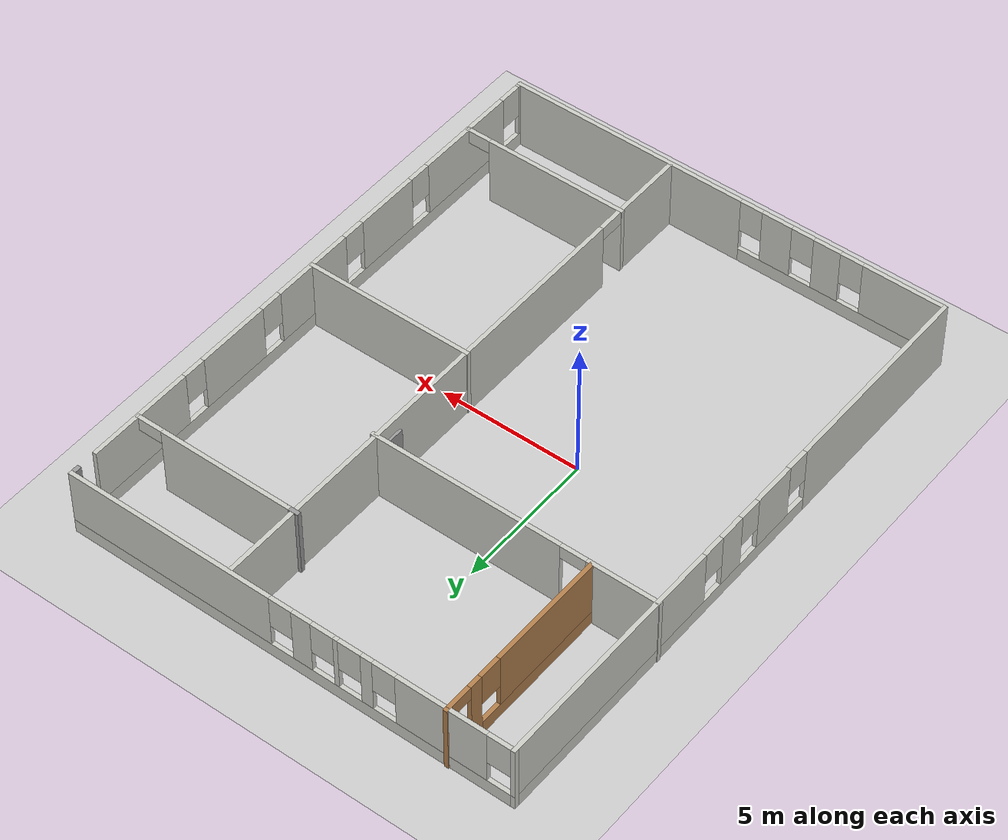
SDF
<sdf version="1.6">
 <world name="default">
  <model name="ground_plane">
   <static>1</static>
   <link name="link">
    <collision name="collision">
     <geometry><plane><normal>0 0 1</normal><size>100 100</size></plane></geometry>
     <surface>
      <contact><collide_bitmask>65535</collide_bitmask></contact>
      <friction><ode><mu>100</mu><mu2>50</mu2></ode></friction>
     </surface>
    </collision>
    <visual name="visual">
     <cast_shadows>0</cast_shadows>
     <geometry><plane><normal>0 0 1</normal><size>100 100</size></plane></geometry>
     <material>
      <script><uri>file://media/materials/scripts/gazebo.material</uri><name>Gazebo/Grey</name></script>
     </material>
    </visual>
   </link>
  </model>
  <model name="home1">
   <pose>1.93406 0.373557 0 0 0 -1.57238</pose>
   <link name="Door_1">
    <collision name="Door_1_Collision">
     <geometry><box><size>0.9 0.17 2</size></box></geometry>
     <pose>0 0 1 0 -0 0</pose>
    </collision>
    <visual name="Door_1_Visual">
     <pose>0 0 1 0 -0 0</pose>
     <geometry><box><size>0.9 0.17 2</size></box></geometry>
     <material>
      <script><uri>file://media/materials/scripts/gazebo.material</uri><name>Gazebo/Grey</name></script>
     </material>
    </visual>
    <pose>-3.38588 1.98487 0 0 -0 0</pose>
   </link>
   <link name="Wall_0">
    <pose>0.147604 7.93643 0 0 -0 0</pose>
    <visual name="Wall_0_Visual_0">
     <pose>0 0 0.25 0 -0 0</pose>
     <geometry><box><size>20.5 0.15 0.5</size></box></geometry>
     <material>
      <script><uri>file://media/materials/scripts/gazebo.material</uri><name>Gazebo/CeilingTiled</name></script>
      <ambient>0.921569 0.807843 0.615686 1</ambient>
     </material>
     <meta><layer>0</layer></meta>
    </visual>
    <collision name="Wall_0_Collision_0">
     <geometry><box><size>20.5 0.15 0.5</size></box></geometry>
     <pose>0 0 0.25 0 -0 0</pose>
    </collision>
    <visual name="Wall_0_Visual_1">
     <pose>-7.57631 0 1.5 0 -0 0</pose>
     <geometry><box><size>3.82612 0.15 2</size></box></geometry>
     <material>
      <script><uri>file://media/materials/scripts/gazebo.material</uri><name>Gazebo/CeilingTiled</name></script>
      <ambient>0.921569 0.807843 0.615686 1</ambient>
     </material>
     <meta><layer>0</layer></meta>
    </visual>
    <collision name="Wall_0_Collision_1">
     <geometry><box><size>3.82612 0.15 2</size></box></geometry>
     <pose>-7.57631 0 1.5 0 -0 0</pose>
    </collision>
    <visual name="Wall_0_Visual_2">
     <pose>-3.55359 0 1.5 0 -0 0</pose>
     <geometry><box><size>2.61931 0.15 2</size></box></geometry>
     <material>
      <script><uri>file://media/materials/scripts/gazebo.material</uri><name>Gazebo/CeilingTiled</name></script>
      <ambient>0.921569 0.807843 0.615686 1</ambient>
     </material>
     <meta><layer>0</layer></meta>
    </visual>
    <collision name="Wall_0_Collision_2">
     <geometry><box><size>2.61931 0.15 2</size></box></geometry>
     <pose>-3.55359 0 1.5 0 -0 0</pose>
    </collision>
    <visual name="Wall_0_Visual_3">
     <pose>0.062686 0 1.5 0 -0 0</pose>
     <geometry><box><size>3.01325 0.15 2</size></box></geometry>
     <material>
      <script><uri>file://media/materials/scripts/gazebo.material</uri><name>Gazebo/CeilingTiled</name></script>
      <ambient>0.921569 0.807843 0.615686 1</ambient>
     </material>
     <meta><layer>0</layer></meta>
    </visual>
    <collision name="Wall_0_Collision_3">
     <geometry><box><size>3.01325 0.15 2</size></box></geometry>
     <pose>0.062686 0 1.5 0 -0 0</pose>
    </collision>
    <visual name="Wall_0_Visual_4">
     <pose>3.53817 0 1.5 0 -0 0</pose>
     <geometry><box><size>2.33772 0.15 2</size></box></geometry>
     <material>
      <script><uri>file://media/materials/scripts/gazebo.material</uri><name>Gazebo/CeilingTiled</name></script>
      <ambient>0.921569 0.807843 0.615686 1</ambient>
     </material>
     <meta><layer>0</layer></meta>
    </visual>
    <collision name="Wall_0_Collision_4">
     <geometry><box><size>2.33772 0.15 2</size></box></geometry>
     <pose>3.53817 0 1.5 0 -0 0</pose>
    </collision>
    <visual name="Wall_0_Visual_5">
     <pose>7.35975 0 1.5 0 -0 0</pose>
     <geometry><box><size>3.70544 0.15 2</size></box></geometry>
     <material>
      <script><uri>file://media/materials/scripts/gazebo.material</uri><name>Gazebo/CeilingTiled</name></script>
      <ambient>0.921569 0.807843 0.615686 1</ambient>
     </material>
     <meta><layer>0</layer></meta>
    </visual>
    <collision name="Wall_0_Collision_5">
     <geometry><box><size>3.70544 0.15 2</size></box></geometry>
     <pose>7.35975 0 1.5 0 -0 0</pose>
    </collision>
    <visual name="Wall_0_Visual_6">
     <pose>10.1312 0 1.5 0 -0 0</pose>
     <geometry><box><size>0.237531 0.15 2</size></box></geometry>
     <material>
      <script><uri>file://media/materials/scripts/gazebo.material</uri><name>Gazebo/CeilingTiled</name></script>
      <ambient>0.921569 0.807843 0.615686 1</ambient>
     </material>
     <meta><layer>0</layer></meta>
    </visual>
    <collision name="Wall_0_Collision_6">
     <geometry><box><size>0.237531 0.15 2</size></box></geometry>
     <pose>10.1312 0 1.5 0 -0 0</pose>
    </collision>
    <visual name="Wall_0_Visual_7">
     <pose>-5.26325 0 1.9 0 -0 0</pose>
     <geometry><box><size>0.8 0.15 1.2</size></box></geometry>
     <material>
      <script><uri>file://media/materials/scripts/gazebo.material</uri><name>Gazebo/CeilingTiled</name></script>
      <ambient>0.921569 0.807843 0.615686 1</ambient>
     </material>
     <meta><layer>0</layer></meta>
    </visual>
    <collision name="Wall_0_Collision_7">
     <geometry><box><size>0.8 0.15 1.2</size></box></geometry>
     <pose>-5.26325 0 1.9 0 -0 0</pose>
    </collision>
    <visual name="Wall_0_Visual_8">
     <pose>-1.84394 0 1.9 0 -0 0</pose>
     <geometry><box><size>0.8 0.15 1.2</size></box></geometry>
     <material>
      <script><uri>file://media/materials/scripts/gazebo.material</uri><name>Gazebo/CeilingTiled</name></script>
      <ambient>0.921569 0.807843 0.615686 1</ambient>
     </material>
     <meta><layer>0</layer></meta>
    </visual>
    <collision name="Wall_0_Collision_8">
     <geometry><box><size>0.8 0.15 1.2</size></box></geometry>
     <pose>-1.84394 0 1.9 0 -0 0</pose>
    </collision>
    <visual name="Wall_0_Visual_9">
     <pose>1.96931 0 1.9 0 -0 0</pose>
     <geometry><box><size>0.8 0.15 1.2</size></box></geometry>
     <material>
      <script><uri>file://media/materials/scripts/gazebo.material</uri><name>Gazebo/CeilingTiled</name></script>
      <ambient>0.921569 0.807843 0.615686 1</ambient>
     </material>
     <meta><layer>0</layer></meta>
    </visual>
    <collision name="Wall_0_Collision_9">
     <geometry><box><size>0.8 0.15 1.2</size></box></geometry>
     <pose>1.96931 0 1.9 0 -0 0</pose>
    </collision>
    <visual name="Wall_0_Visual_10">
     <pose>5.10703 0 1.9 0 -0 0</pose>
     <geometry><box><size>0.8 0.15 1.2</size></box></geometry>
     <material>
      <script><uri>file://media/materials/scripts/gazebo.material</uri><name>Gazebo/CeilingTiled</name></script>
      <ambient>0.921569 0.807843 0.615686 1</ambient>
     </material>
     <meta><layer>0</layer></meta>
    </visual>
    <collision name="Wall_0_Collision_10">
     <geometry><box><size>0.8 0.15 1.2</size></box></geometry>
     <pose>5.10703 0 1.9 0 -0 0</pose>
    </collision>
    <visual name="Wall_0_Visual_11">
     <pose>9.61247 0 1.9 0 -0 0</pose>
     <geometry><box><size>0.8 0.15 1.2</size></box></geometry>
     <material>
      <script><uri>file://media/materials/scripts/gazebo.material</uri><name>Gazebo/CeilingTiled</name></script>
      <ambient>0.921569 0.807843 0.615686 1</ambient>
     </material>
     <meta><layer>0</layer></meta>
    </visual>
    <collision name="Wall_0_Collision_11">
     <geometry><box><size>0.8 0.15 1.2</size></box></geometry>
     <pose>9.61247 0 1.9 0 -0 0</pose>
    </collision>
   </link>
   <link name="Wall_1">
    <pose>10.3226 0.011429 0 0 -0 -1.5708</pose>
    <visual name="Wall_1_Visual_0">
     <pose>-3.70199 0 1.25 0 -0 0</pose>
     <geometry><box><size>8.59603 0.15 2.5</size></box></geometry>
     <material>
      <script><uri>file://media/materials/scripts/gazebo.material</uri><name>Gazebo/CeilingTiled</name></script>
      <ambient>0.921569 0.807843 0.615686 1</ambient>
     </material>
     <meta><layer>0</layer></meta>
    </visual>
    <collision name="Wall_1_Collision_0">
     <geometry><box><size>8.59603 0.15 2.5</size></box></geometry>
     <pose>-3.70199 0 1.25 0 -0 0</pose>
    </collision>
    <visual name="Wall_1_Visual_1">
     <pose>4.29801 0 0.25 0 -0 0</pose>
     <geometry><box><size>7.40397 0.15 0.5</size></box></geometry>
     <material>
      <script><uri>file://media/materials/scripts/gazebo.material</uri><name>Gazebo/CeilingTiled</name></script>
      <ambient>0.921569 0.807843 0.615686 1</ambient>
     </material>
     <meta><layer>0</layer></meta>
    </visual>
    <collision name="Wall_1_Collision_1">
     <geometry><box><size>7.40397 0.15 0.5</size></box></geometry>
     <pose>4.29801 0 0.25 0 -0 0</pose>
    </collision>
    <visual name="Wall_1_Visual_2">
     <pose>1.94137 0 1.5 0 -0 0</pose>
     <geometry><box><size>1.09068 0.15 2</size></box></geometry>
     <material>
      <script><uri>file://media/materials/scripts/gazebo.material</uri><name>Gazebo/CeilingTiled</name></script>
      <ambient>0.921569 0.807843 0.615686 1</ambient>
     </material>
     <meta><layer>0</layer></meta>
    </visual>
    <collision name="Wall_1_Collision_2">
     <geometry><box><size>1.09068 0.15 2</size></box></geometry>
     <pose>1.94137 0 1.5 0 -0 0</pose>
    </collision>
    <visual name="Wall_1_Visual_3">
     <pose>3.7717 0 1.5 0 -0 0</pose>
     <geometry><box><size>0.969995 0.15 2</size></box></geometry>
     <material>
      <script><uri>file://media/materials/scripts/gazebo.material</uri><name>Gazebo/CeilingTiled</name></script>
      <ambient>0.921569 0.807843 0.615686 1</ambient>
     </material>
     <meta><layer>0</layer></meta>
    </visual>
    <collision name="Wall_1_Collision_3">
     <geometry><box><size>0.969995 0.15 2</size></box></geometry>
     <pose>3.7717 0 1.5 0 -0 0</pose>
    </collision>
    <visual name="Wall_1_Visual_4">
     <pose>6.52835 0 1.5 0 -0 0</pose>
     <geometry><box><size>2.9433 0.15 2</size></box></geometry>
     <material>
      <script><uri>file://media/materials/scripts/gazebo.material</uri><name>Gazebo/CeilingTiled</name></script>
      <ambient>0.921569 0.807843 0.615686 1</ambient>
     </material>
     <meta><layer>0</layer></meta>
    </visual>
    <collision name="Wall_1_Collision_4">
     <geometry><box><size>2.9433 0.15 2</size></box></geometry>
     <pose>6.52835 0 1.5 0 -0 0</pose>
    </collision>
    <visual name="Wall_1_Visual_5">
     <pose>0.996027 0 1.9 0 -0 0</pose>
     <geometry><box><size>0.8 0.15 1.2</size></box></geometry>
     <material>
      <script><uri>file://media/materials/scripts/gazebo.material</uri><name>Gazebo/CeilingTiled</name></script>
      <ambient>0.921569 0.807843 0.615686 1</ambient>
     </material>
     <meta><layer>0</layer></meta>
    </visual>
    <collision name="Wall_1_Collision_5">
     <geometry><box><size>0.8 0.15 1.2</size></box></geometry>
     <pose>0.996027 0 1.9 0 -0 0</pose>
    </collision>
    <visual name="Wall_1_Visual_6">
     <pose>2.8867 0 1.9 0 -0 0</pose>
     <geometry><box><size>0.8 0.15 1.2</size></box></geometry>
     <material>
      <script><uri>file://media/materials/scripts/gazebo.material</uri><name>Gazebo/CeilingTiled</name></script>
      <ambient>0.921569 0.807843 0.615686 1</ambient>
     </material>
     <meta><layer>0</layer></meta>
    </visual>
    <collision name="Wall_1_Collision_6">
     <geometry><box><size>0.8 0.15 1.2</size></box></geometry>
     <pose>2.8867 0 1.9 0 -0 0</pose>
    </collision>
    <visual name="Wall_1_Visual_7">
     <pose>4.6567 0 1.9 0 -0 0</pose>
     <geometry><box><size>0.8 0.15 1.2</size></box></geometry>
     <material>
      <script><uri>file://media/materials/scripts/gazebo.material</uri><name>Gazebo/CeilingTiled</name></script>
      <ambient>0.921569 0.807843 0.615686 1</ambient>
     </material>
     <meta><layer>0</layer></meta>
    </visual>
    <collision name="Wall_1_Collision_7">
     <geometry><box><size>0.8 0.15 1.2</size></box></geometry>
     <pose>4.6567 0 1.9 0 -0 0</pose>
    </collision>
   </link>
   <link name="Wall_11">
    <collision name="Wall_11_Collision">
     <geometry><box><size>6 0.15 2.5</size></box></geometry>
     <pose>0 0 1.25 0 -0 0</pose>
    </collision>
    <visual name="Wall_11_Visual">
     <pose>0 0 1.25 0 -0 0</pose>
     <geometry><box><size>6 0.15 2.5</size></box></geometry>
     <material>
      <script><uri>file://media/materials/scripts/gazebo.material</uri><name>Gazebo/CeilingTiled</name></script>
      <ambient>0.921569 0.807843 0.615686 1</ambient>
     </material>
     <meta><layer>0</layer></meta>
    </visual>
    <pose>0.224951 4.97496 0 0 -0 -1.5708</pose>
   </link>
   <link name="Wall_13">
    <pose>-7.14761 -5.65458 0 0 -0 0</pose>
    <visual name="Wall_13_Visual_0">
     <pose>-3.18319 0 1.25 0 -0 0</pose>
     <geometry><box><size>0.133628 0.15 2.5</size></box></geometry>
     <material>
      <script><uri>file://media/materials/scripts/gazebo.material</uri><name>Gazebo/Wood</name></script>
      <ambient>0.921569 0.807843 0.615686 1</ambient>
     </material>
     <meta><layer>0</layer></meta>
    </visual>
    <collision name="Wall_13_Collision_0">
     <geometry><box><size>0.133628 0.15 2.5</size></box></geometry>
     <pose>-3.18319 0 1.25 0 -0 0</pose>
    </collision>
    <visual name="Wall_13_Visual_1">
     <pose>-1.98591 0 1.25 0 -0 0</pose>
     <geometry><box><size>0.460928 0.15 2.5</size></box></geometry>
     <material>
      <script><uri>file://media/materials/scripts/gazebo.material</uri><name>Gazebo/Wood</name></script>
      <ambient>0.921569 0.807843 0.615686 1</ambient>
     </material>
     <meta><layer>0</layer></meta>
    </visual>
    <collision name="Wall_13_Collision_1">
     <geometry><box><size>0.460928 0.15 2.5</size></box></geometry>
     <pose>-1.98591 0 1.25 0 -0 0</pose>
    </collision>
    <visual name="Wall_13_Visual_2">
     <pose>0.747278 0 0.25 0 -0 0</pose>
     <geometry><box><size>5.00544 0.15 0.5</size></box></geometry>
     <material>
      <script><uri>file://media/materials/scripts/gazebo.material</uri><name>Gazebo/Wood</name></script>
      <ambient>0.921569 0.807843 0.615686 1</ambient>
     </material>
     <meta><layer>0</layer></meta>
    </visual>
    <collision name="Wall_13_Collision_2">
     <geometry><box><size>5.00544 0.15 0.5</size></box></geometry>
     <pose>0.747278 0 0.25 0 -0 0</pose>
    </collision>
    <visual name="Wall_13_Visual_3">
     <pose>1.14728 0 1.5 0 -0 0</pose>
     <geometry><box><size>4.20544 0.15 2</size></box></geometry>
     <material>
      <script><uri>file://media/materials/scripts/gazebo.material</uri><name>Gazebo/Wood</name></script>
      <ambient>0.921569 0.807843 0.615686 1</ambient>
     </material>
     <meta><layer>0</layer></meta>
    </visual>
    <collision name="Wall_13_Collision_3">
     <geometry><box><size>4.20544 0.15 2</size></box></geometry>
     <pose>1.14728 0 1.5 0 -0 0</pose>
    </collision>
    <visual name="Wall_13_Visual_4">
     <pose>-1.35544 0 1.9 0 -0 0</pose>
     <geometry><box><size>0.8 0.15 1.2</size></box></geometry>
     <material>
      <script><uri>file://media/materials/scripts/gazebo.material</uri><name>Gazebo/Wood</name></script>
      <ambient>0.921569 0.807843 0.615686 1</ambient>
     </material>
     <meta><layer>0</layer></meta>
    </visual>
    <collision name="Wall_13_Collision_4">
     <geometry><box><size>0.8 0.15 1.2</size></box></geometry>
     <pose>-1.35544 0 1.9 0 -0 0</pose>
    </collision>
    <visual name="Wall_13_Visual_5">
     <pose>-2.66637 0 2.25 0 -0 0</pose>
     <geometry><box><size>0.9 0.15 0.5</size></box></geometry>
     <material>
      <script><uri>file://media/materials/scripts/gazebo.material</uri><name>Gazebo/Wood</name></script>
      <ambient>0.921569 0.807843 0.615686 1</ambient>
     </material>
     <meta><layer>0</layer></meta>
    </visual>
    <collision name="Wall_13_Collision_5">
     <geometry><box><size>0.9 0.15 0.5</size></box></geometry>
     <pose>-2.66637 0 2.25 0 -0 0</pose>
    </collision>
   </link>
   <link name="Wall_15">
    <pose>-7.50067 5.09996 0 0 -0 -1.5708</pose>
    <visual name="Wall_15_Visual_0">
     <pose>-2.83635 0 1.25 0 -0 0</pose>
     <geometry><box><size>0.077299 0.15 2.5</size></box></geometry>
     <material>
      <script><uri>file://media/materials/scripts/gazebo.material</uri><name>Gazebo/CeilingTiled</name></script>
      <ambient>0.921569 0.807843 0.615686 1</ambient>
     </material>
     <meta><layer>0</layer></meta>
    </visual>
    <collision name="Wall_15_Collision_0">
     <geometry><box><size>0.077299 0.15 2.5</size></box></geometry>
     <pose>-2.83635 0 1.25 0 -0 0</pose>
    </collision>
    <visual name="Wall_15_Visual_1">
     <pose>0.488649 0 1.25 0 -0 0</pose>
     <geometry><box><size>4.7727 0.15 2.5</size></box></geometry>
     <material>
      <script><uri>file://media/materials/scripts/gazebo.material</uri><name>Gazebo/CeilingTiled</name></script>
      <ambient>0.921569 0.807843 0.615686 1</ambient>
     </material>
     <meta><layer>0</layer></meta>
    </visual>
    <collision name="Wall_15_Collision_1">
     <geometry><box><size>4.7727 0.15 2.5</size></box></geometry>
     <pose>0.488649 0 1.25 0 -0 0</pose>
    </collision>
    <visual name="Wall_15_Visual_2">
     <pose>-2.3477 0 2.25 0 -0 0</pose>
     <geometry><box><size>0.9 0.15 0.5</size></box></geometry>
     <material>
      <script><uri>file://media/materials/scripts/gazebo.material</uri><name>Gazebo/CeilingTiled</name></script>
      <ambient>0.921569 0.807843 0.615686 1</ambient>
     </material>
     <meta><layer>0</layer></meta>
    </visual>
    <collision name="Wall_15_Collision_2">
     <geometry><box><size>0.9 0.15 0.5</size></box></geometry>
     <pose>-2.3477 0 2.25 0 -0 0</pose>
    </collision>
   </link>
   <link name="Wall_17">
    <collision name="Wall_17_Collision">
     <geometry><box><size>0.5 0.15 2.5</size></box></geometry>
     <pose>0 0 1.25 0 -0 0</pose>
    </collision>
    <visual name="Wall_17_Visual">
     <pose>0 0 1.25 0 -0 0</pose>
     <geometry><box><size>0.5 0.15 2.5</size></box></geometry>
     <material>
      <script><uri>file://media/materials/scripts/gazebo.material</uri><name>Gazebo/Grey</name></script>
      <ambient>1 1 1 1</ambient>
     </material>
     <meta><layer>0</layer></meta>
    </visual>
    <pose>-7.50067 2.12496 0 0 -0 -1.5708</pose>
   </link>
   <link name="Wall_19">
    <pose>7.71927 4.97496 0 0 -0 -1.5708</pose>
    <visual name="Wall_19_Visual_0">
     <pose>-2.99633 0 1.25 0 -0 0</pose>
     <geometry><box><size>0.007339 0.15 2.5</size></box></geometry>
     <material>
      <script><uri>file://media/materials/scripts/gazebo.material</uri><name>Gazebo/CeilingTiled</name></script>
      <ambient>0.921569 0.807843 0.615686 1</ambient>
     </material>
     <meta><layer>0</layer></meta>
    </visual>
    <collision name="Wall_19_Collision_0">
     <geometry><box><size>0.007339 0.15 2.5</size></box></geometry>
     <pose>-2.99633 0 1.25 0 -0 0</pose>
    </collision>
    <visual name="Wall_19_Visual_1">
     <pose>0.453669 0 1.25 0 -0 0</pose>
     <geometry><box><size>5.09266 0.15 2.5</size></box></geometry>
     <material>
      <script><uri>file://media/materials/scripts/gazebo.material</uri><name>Gazebo/CeilingTiled</name></script>
      <ambient>0.921569 0.807843 0.615686 1</ambient>
     </material>
     <meta><layer>0</layer></meta>
    </visual>
    <collision name="Wall_19_Collision_1">
     <geometry><box><size>5.09266 0.15 2.5</size></box></geometry>
     <pose>0.453669 0 1.25 0 -0 0</pose>
    </collision>
    <visual name="Wall_19_Visual_2">
     <pose>-2.54266 0 2.25 0 -0 0</pose>
     <geometry><box><size>0.9 0.15 0.5</size></box></geometry>
     <material>
      <script><uri>file://media/materials/scripts/gazebo.material</uri><name>Gazebo/CeilingTiled</name></script>
      <ambient>0.921569 0.807843 0.615686 1</ambient>
     </material>
     <meta><layer>0</layer></meta>
    </visual>
    <collision name="Wall_19_Collision_2">
     <geometry><box><size>0.9 0.15 0.5</size></box></geometry>
     <pose>-2.54266 0 2.25 0 -0 0</pose>
    </collision>
   </link>
   <link name="Wall_2">
    <pose>0.022604 -7.91357 0 0 -0 3.14159</pose>
    <visual name="Wall_2_Visual_0">
     <pose>-6.73636 0 1.25 0 -0 0</pose>
     <geometry><box><size>7.27728 0.15 2.5</size></box></geometry>
     <material>
      <script><uri>file://media/materials/scripts/gazebo.material</uri><name>Gazebo/CeilingTiled</name></script>
      <ambient>0.921569 0.807843 0.615686 1</ambient>
     </material>
     <meta><layer>0</layer></meta>
    </visual>
    <collision name="Wall_2_Collision_0">
     <geometry><box><size>7.27728 0.15 2.5</size></box></geometry>
     <pose>-6.73636 0 1.25 0 -0 0</pose>
    </collision>
    <visual name="Wall_2_Visual_1">
     <pose>3.63864 0 0.25 0 -0 0</pose>
     <geometry><box><size>13.4727 0.15 0.5</size></box></geometry>
     <material>
      <script><uri>file://media/materials/scripts/gazebo.material</uri><name>Gazebo/CeilingTiled</name></script>
      <ambient>0.921569 0.807843 0.615686 1</ambient>
     </material>
     <meta><layer>0</layer></meta>
    </visual>
    <collision name="Wall_2_Collision_1">
     <geometry><box><size>13.4727 0.15 0.5</size></box></geometry>
     <pose>3.63864 0 0.25 0 -0 0</pose>
    </collision>
    <visual name="Wall_2_Visual_2">
     <pose>-1.53113 0 1.5 0 -0 0</pose>
     <geometry><box><size>1.53317 0.15 2</size></box></geometry>
     <material>
      <script><uri>file://media/materials/scripts/gazebo.material</uri><name>Gazebo/CeilingTiled</name></script>
      <ambient>0.921569 0.807843 0.615686 1</ambient>
     </material>
     <meta><layer>0</layer></meta>
    </visual>
    <collision name="Wall_2_Collision_2">
     <geometry><box><size>1.53317 0.15 2</size></box></geometry>
     <pose>-1.53113 0 1.5 0 -0 0</pose>
    </collision>
    <visual name="Wall_2_Visual_3">
     <pose>0.50034 0 1.5 0 -0 0</pose>
     <geometry><box><size>0.929767 0.15 2</size></box></geometry>
     <material>
      <script><uri>file://media/materials/scripts/gazebo.material</uri><name>Gazebo/CeilingTiled</name></script>
      <ambient>0.921569 0.807843 0.615686 1</ambient>
     </material>
     <meta><layer>0</layer></meta>
    </visual>
    <collision name="Wall_2_Collision_3">
     <geometry><box><size>0.929767 0.15 2</size></box></geometry>
     <pose>0.50034 0 1.5 0 -0 0</pose>
    </collision>
    <visual name="Wall_2_Visual_4">
     <pose>6.07011 0 1.5 0 -0 0</pose>
     <geometry><box><size>8.60978 0.15 2</size></box></geometry>
     <material>
      <script><uri>file://media/materials/scripts/gazebo.material</uri><name>Gazebo/CeilingTiled</name></script>
      <ambient>0.921569 0.807843 0.615686 1</ambient>
     </material>
     <meta><layer>0</layer></meta>
    </visual>
    <collision name="Wall_2_Collision_4">
     <geometry><box><size>8.60978 0.15 2</size></box></geometry>
     <pose>6.07011 0 1.5 0 -0 0</pose>
    </collision>
    <visual name="Wall_2_Visual_5">
     <pose>-2.69772 0 1.9 0 -0 0</pose>
     <geometry><box><size>0.8 0.15 1.2</size></box></geometry>
     <material>
      <script><uri>file://media/materials/scripts/gazebo.material</uri><name>Gazebo/CeilingTiled</name></script>
      <ambient>0.921569 0.807843 0.615686 1</ambient>
     </material>
     <meta><layer>0</layer></meta>
    </visual>
    <collision name="Wall_2_Collision_5">
     <geometry><box><size>0.8 0.15 1.2</size></box></geometry>
     <pose>-2.69772 0 1.9 0 -0 0</pose>
    </collision>
    <visual name="Wall_2_Visual_6">
     <pose>-0.364544 0 1.9 0 -0 0</pose>
     <geometry><box><size>0.8 0.15 1.2</size></box></geometry>
     <material>
      <script><uri>file://media/materials/scripts/gazebo.material</uri><name>Gazebo/CeilingTiled</name></script>
      <ambient>0.921569 0.807843 0.615686 1</ambient>
     </material>
     <meta><layer>0</layer></meta>
    </visual>
    <collision name="Wall_2_Collision_6">
     <geometry><box><size>0.8 0.15 1.2</size></box></geometry>
     <pose>-0.364544 0 1.9 0 -0 0</pose>
    </collision>
    <visual name="Wall_2_Visual_7">
     <pose>1.36522 0 1.9 0 -0 0</pose>
     <geometry><box><size>0.8 0.15 1.2</size></box></geometry>
     <material>
      <script><uri>file://media/materials/scripts/gazebo.material</uri><name>Gazebo/CeilingTiled</name></script>
      <ambient>0.921569 0.807843 0.615686 1</ambient>
     </material>
     <meta><layer>0</layer></meta>
    </visual>
    <collision name="Wall_2_Collision_7">
     <geometry><box><size>0.8 0.15 1.2</size></box></geometry>
     <pose>1.36522 0 1.9 0 -0 0</pose>
    </collision>
   </link>
   <link name="Wall_3">
    <pose>-10.2774 0.011429 0 0 -0 1.5708</pose>
    <visual name="Wall_3_Visual_0">
     <pose>-7.91618 0 1.25 0 -0 0</pose>
     <geometry><box><size>0.16763 0.15 2.5</size></box></geometry>
     <material>
      <script><uri>file://media/materials/scripts/gazebo.material</uri><name>Gazebo/CeilingTiled</name></script>
      <ambient>0.921569 0.807843 0.615686 1</ambient>
     </material>
     <meta><layer>0</layer></meta>
    </visual>
    <collision name="Wall_3_Collision_0">
     <geometry><box><size>0.16763 0.15 2.5</size></box></geometry>
     <pose>-7.91618 0 1.25 0 -0 0</pose>
    </collision>
    <visual name="Wall_3_Visual_1">
     <pose>0.083815 0 0.25 0 -0 0</pose>
     <geometry><box><size>15.8324 0.15 0.5</size></box></geometry>
     <material>
      <script><uri>file://media/materials/scripts/gazebo.material</uri><name>Gazebo/CeilingTiled</name></script>
      <ambient>0.921569 0.807843 0.615686 1</ambient>
     </material>
     <meta><layer>0</layer></meta>
    </visual>
    <collision name="Wall_3_Collision_1">
     <geometry><box><size>15.8324 0.15 0.5</size></box></geometry>
     <pose>0.083815 0 0.25 0 -0 0</pose>
    </collision>
    <visual name="Wall_3_Visual_2">
     <pose>-5.46124 0 1.5 0 -0 0</pose>
     <geometry><box><size>3.14226 0.15 2</size></box></geometry>
     <material>
      <script><uri>file://media/materials/scripts/gazebo.material</uri><name>Gazebo/CeilingTiled</name></script>
      <ambient>0.921569 0.807843 0.615686 1</ambient>
     </material>
     <meta><layer>0</layer></meta>
    </visual>
    <collision name="Wall_3_Collision_2">
     <geometry><box><size>3.14226 0.15 2</size></box></geometry>
     <pose>-5.46124 0 1.5 0 -0 0</pose>
    </collision>
    <visual name="Wall_3_Visual_3">
     <pose>-2.8867 0 1.5 0 -0 0</pose>
     <geometry><box><size>0.406815 0.15 2</size></box></geometry>
     <material>
      <script><uri>file://media/materials/scripts/gazebo.material</uri><name>Gazebo/CeilingTiled</name></script>
      <ambient>0.921569 0.807843 0.615686 1</ambient>
     </material>
     <meta><layer>0</layer></meta>
    </visual>
    <collision name="Wall_3_Collision_3">
     <geometry><box><size>0.406815 0.15 2</size></box></geometry>
     <pose>-2.8867 0 1.5 0 -0 0</pose>
    </collision>
    <visual name="Wall_3_Visual_4">
     <pose>-1.80057 0 1.5 0 -0 0</pose>
     <geometry><box><size>0.165451 0.15 2</size></box></geometry>
     <material>
      <script><uri>file://media/materials/scripts/gazebo.material</uri><name>Gazebo/CeilingTiled</name></script>
      <ambient>0.921569 0.807843 0.615686 1</ambient>
     </material>
     <meta><layer>0</layer></meta>
    </visual>
    <collision name="Wall_3_Collision_4">
     <geometry><box><size>0.165451 0.15 2</size></box></geometry>
     <pose>-1.80057 0 1.5 0 -0 0</pose>
    </collision>
    <visual name="Wall_3_Visual_5">
     <pose>-0.573642 0 1.5 0 -0 0</pose>
     <geometry><box><size>0.688404 0.15 2</size></box></geometry>
     <material>
      <script><uri>file://media/materials/scripts/gazebo.material</uri><name>Gazebo/CeilingTiled</name></script>
      <ambient>0.921569 0.807843 0.615686 1</ambient>
     </material>
     <meta><layer>0</layer></meta>
    </visual>
    <collision name="Wall_3_Collision_5">
     <geometry><box><size>0.688404 0.15 2</size></box></geometry>
     <pose>-0.573642 0 1.5 0 -0 0</pose>
    </collision>
    <visual name="Wall_3_Visual_6">
     <pose>4.28528 0 1.5 0 -0 0</pose>
     <geometry><box><size>7.42944 0.15 2</size></box></geometry>
     <material>
      <script><uri>file://media/materials/scripts/gazebo.material</uri><name>Gazebo/CeilingTiled</name></script>
      <ambient>0.921569 0.807843 0.615686 1</ambient>
     </material>
     <meta><layer>0</layer></meta>
    </visual>
    <collision name="Wall_3_Collision_6">
     <geometry><box><size>7.42944 0.15 2</size></box></geometry>
     <pose>4.28528 0 1.5 0 -0 0</pose>
    </collision>
    <visual name="Wall_3_Visual_7">
     <pose>-7.43237 0 1.9 0 -0 0</pose>
     <geometry><box><size>0.8 0.15 1.2</size></box></geometry>
     <material>
      <script><uri>file://media/materials/scripts/gazebo.material</uri><name>Gazebo/CeilingTiled</name></script>
      <ambient>0.921569 0.807843 0.615686 1</ambient>
     </material>
     <meta><layer>0</layer></meta>
    </visual>
    <collision name="Wall_3_Collision_7">
     <geometry><box><size>0.8 0.15 1.2</size></box></geometry>
     <pose>-7.43237 0 1.9 0 -0 0</pose>
    </collision>
    <visual name="Wall_3_Visual_8">
     <pose>-3.49011 0 1.9 0 -0 0</pose>
     <geometry><box><size>0.8 0.15 1.2</size></box></geometry>
     <material>
      <script><uri>file://media/materials/scripts/gazebo.material</uri><name>Gazebo/CeilingTiled</name></script>
      <ambient>0.921569 0.807843 0.615686 1</ambient>
     </material>
     <meta><layer>0</layer></meta>
    </visual>
    <collision name="Wall_3_Collision_8">
     <geometry><box><size>0.8 0.15 1.2</size></box></geometry>
     <pose>-3.49011 0 1.9 0 -0 0</pose>
    </collision>
    <visual name="Wall_3_Visual_9">
     <pose>-2.2833 0 1.9 0 -0 0</pose>
     <geometry><box><size>0.8 0.15 1.2</size></box></geometry>
     <material>
      <script><uri>file://media/materials/scripts/gazebo.material</uri><name>Gazebo/CeilingTiled</name></script>
      <ambient>0.921569 0.807843 0.615686 1</ambient>
     </material>
     <meta><layer>0</layer></meta>
    </visual>
    <collision name="Wall_3_Collision_9">
     <geometry><box><size>0.8 0.15 1.2</size></box></geometry>
     <pose>-2.2833 0 1.9 0 -0 0</pose>
    </collision>
    <visual name="Wall_3_Visual_10">
     <pose>-1.31784 0 1.9 0 -0 0</pose>
     <geometry><box><size>0.8 0.15 1.2</size></box></geometry>
     <material>
      <script><uri>file://media/materials/scripts/gazebo.material</uri><name>Gazebo/CeilingTiled</name></script>
      <ambient>0.921569 0.807843 0.615686 1</ambient>
     </material>
     <meta><layer>0</layer></meta>
    </visual>
    <collision name="Wall_3_Collision_10">
     <geometry><box><size>0.8 0.15 1.2</size></box></geometry>
     <pose>-1.31784 0 1.9 0 -0 0</pose>
    </collision>
    <visual name="Wall_3_Visual_11">
     <pose>0.17056 0 1.9 0 -0 0</pose>
     <geometry><box><size>0.8 0.15 1.2</size></box></geometry>
     <material>
      <script><uri>file://media/materials/scripts/gazebo.material</uri><name>Gazebo/CeilingTiled</name></script>
      <ambient>0.921569 0.807843 0.615686 1</ambient>
     </material>
     <meta><layer>0</layer></meta>
    </visual>
    <collision name="Wall_3_Collision_11">
     <geometry><box><size>0.8 0.15 1.2</size></box></geometry>
     <pose>0.17056 0 1.9 0 -0 0</pose>
    </collision>
   </link>
   <link name="Wall_4">
    <collision name="Wall_4_Collision">
     <geometry><box><size>0.15 0.15 2.5</size></box></geometry>
     <pose>0 0 1.25 0 -0 0</pose>
    </collision>
    <visual name="Wall_4_Visual">
     <pose>0 0 1.25 0 -0 0</pose>
     <geometry><box><size>0.15 0.15 2.5</size></box></geometry>
     <material>
      <script><uri>file://media/materials/scripts/gazebo.material</uri><name>Gazebo/Grey</name></script>
      <ambient>1 1 1 1</ambient>
     </material>
     <meta><layer>0</layer></meta>
    </visual>
    <pose>-10.2774 7.93643 0 0 -0 0</pose>
   </link>
   <link name="Wall_5">
    <collision name="Wall_5_Collision">
     <geometry><box><size>0.4 0.15 2.5</size></box></geometry>
     <pose>0 0 1.25 0 -0 0</pose>
    </collision>
    <visual name="Wall_5_Visual">
     <pose>0 0 1.25 0 -0 0</pose>
     <geometry><box><size>0.4 0.15 2.5</size></box></geometry>
     <material>
      <script><uri>file://media/materials/scripts/gazebo.material</uri><name>Gazebo/Grey</name></script>
      <ambient>1 1 1 1</ambient>
     </material>
     <meta><layer>0</layer></meta>
    </visual>
    <pose>-10.1524 7.93643 0 0 -0 0</pose>
   </link>
   <link name="Wall_7">
    <pose>0.037439 2.07105 0 0 -0 0</pose>
    <visual name="Wall_7_Visual_0">
     <pose>-1.75805 0 1.25 0 -0 0</pose>
     <geometry><box><size>16.9839 0.15 2.5</size></box></geometry>
     <material>
      <script><uri>file://media/materials/scripts/gazebo.material</uri><name>Gazebo/CeilingTiled</name></script>
      <ambient>0.921569 0.807843 0.615686 1</ambient>
     </material>
     <meta><layer>0</layer></meta>
    </visual>
    <collision name="Wall_7_Collision_0">
     <geometry><box><size>16.9839 0.15 2.5</size></box></geometry>
     <pose>-1.75805 0 1.25 0 -0 0</pose>
    </collision>
    <visual name="Wall_7_Visual_1">
     <pose>8.94195 0 1.25 0 -0 0</pose>
     <geometry><box><size>2.6161 0.15 2.5</size></box></geometry>
     <material>
      <script><uri>file://media/materials/scripts/gazebo.material</uri><name>Gazebo/CeilingTiled</name></script>
      <ambient>0.921569 0.807843 0.615686 1</ambient>
     </material>
     <meta><layer>0</layer></meta>
    </visual>
    <collision name="Wall_7_Collision_1">
     <geometry><box><size>2.6161 0.15 2.5</size></box></geometry>
     <pose>8.94195 0 1.25 0 -0 0</pose>
    </collision>
    <visual name="Wall_7_Visual_2">
     <pose>7.1839 0 2.25 0 -0 0</pose>
     <geometry><box><size>0.9 0.15 0.5</size></box></geometry>
     <material>
      <script><uri>file://media/materials/scripts/gazebo.material</uri><name>Gazebo/CeilingTiled</name></script>
      <ambient>0.921569 0.807843 0.615686 1</ambient>
     </material>
     <meta><layer>0</layer></meta>
    </visual>
    <collision name="Wall_7_Collision_2">
     <geometry><box><size>0.9 0.15 0.5</size></box></geometry>
     <pose>7.1839 0 2.25 0 -0 0</pose>
    </collision>
   </link>
   <link name="Wall_9">
    <pose>-3.8923 -2.88643 0 0 -0 -1.5708</pose>
    <visual name="Wall_9_Visual_0">
     <pose>-1.72339 0 1.25 0 -0 0</pose>
     <geometry><box><size>6.80322 0.15 2.5</size></box></geometry>
     <material>
      <script><uri>file://media/materials/scripts/gazebo.material</uri><name>Gazebo/CeilingTiled</name></script>
      <ambient>0.921569 0.807843 0.615686 1</ambient>
     </material>
     <meta><layer>0</layer></meta>
    </visual>
    <collision name="Wall_9_Collision_0">
     <geometry><box><size>6.80322 0.15 2.5</size></box></geometry>
     <pose>-1.72339 0 1.25 0 -0 0</pose>
    </collision>
    <visual name="Wall_9_Visual_1">
     <pose>3.85161 0 1.25 0 -0 0</pose>
     <geometry><box><size>2.54678 0.15 2.5</size></box></geometry>
     <material>
      <script><uri>file://media/materials/scripts/gazebo.material</uri><name>Gazebo/CeilingTiled</name></script>
      <ambient>0.921569 0.807843 0.615686 1</ambient>
     </material>
     <meta><layer>0</layer></meta>
    </visual>
    <collision name="Wall_9_Collision_1">
     <geometry><box><size>2.54678 0.15 2.5</size></box></geometry>
     <pose>3.85161 0 1.25 0 -0 0</pose>
    </collision>
    <visual name="Wall_9_Visual_2">
     <pose>2.12822 0 2.25 0 -0 0</pose>
     <geometry><box><size>0.9 0.15 0.5</size></box></geometry>
     <material>
      <script><uri>file://media/materials/scripts/gazebo.material</uri><name>Gazebo/CeilingTiled</name></script>
      <ambient>0.921569 0.807843 0.615686 1</ambient>
     </material>
     <meta><layer>0</layer></meta>
    </visual>
    <collision name="Wall_9_Collision_2">
     <geometry><box><size>0.9 0.15 0.5</size></box></geometry>
     <pose>2.12822 0 2.25 0 -0 0</pose>
    </collision>
   </link>
   <static>1</static>
  </model>
 </world>
</sdf>
